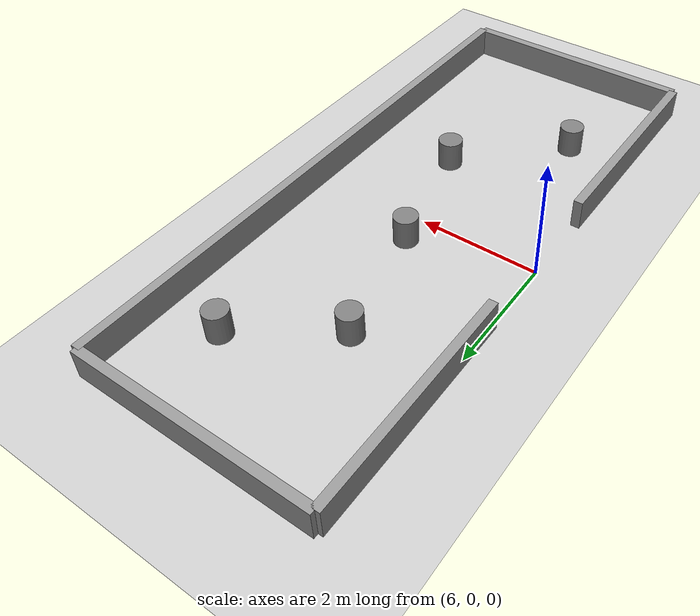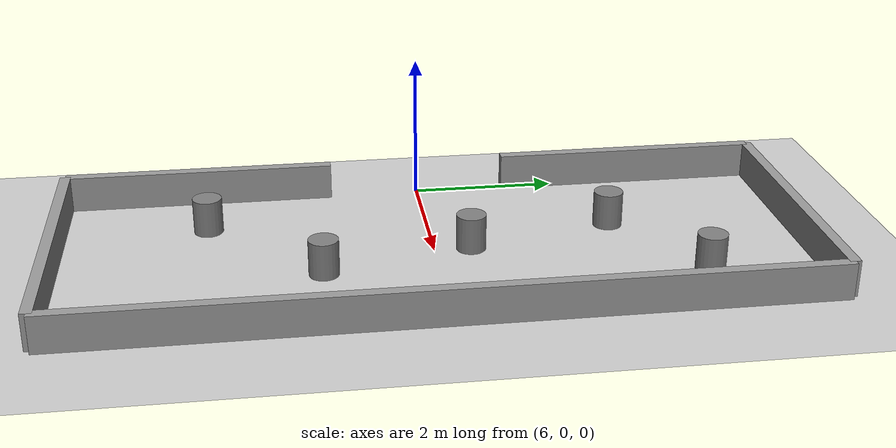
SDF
<?xml version="1.0" ?>
<sdf version="1.5">
    <world name="default">
        <physics type="ode">
            <type>world</type>
            <max_step_size>0.002</max_step_size>
            <real_time_update_rate>500</real_time_update_rate>
            <iters>500</iters>
        </physics>

        <include>
            <uri>model://sun</uri>
        </include>
        <include>
            <uri>model://ground_plane</uri>
        </include>

        <scene>
            <ambient>0.7 0.7 0.7 1</ambient>
            <background>0.8 0.85 0.9 1</background>
            <shadows>0</shadows>
        </scene>

        <!-- Left long wall UPPER: x=6, y=1.25..5 -->
        <model name="wall_left_upper">
            <static>true</static>
            <pose>6.0 3.125 0.25  0 0 0</pose>
            <link name="link">
                <collision name="col">
                    <geometry><box><size>0.15 3.75 0.5</size></box></geometry>
                </collision>
                <visual name="vis">
                    <geometry><box><size>0.15 3.75 0.5</size></box></geometry>
                    <material>
                        <ambient>0.6 0.6 0.6 1</ambient>
                        <diffuse>0.6 0.6 0.6 1</diffuse>
                    </material>
                </visual>
            </link>
        </model>

        <!-- Left long wall LOWER: x=6, y=-5..-1.25 -->
        <model name="wall_left_lower">
            <static>true</static>
            <pose>6.0 -3.125 0.25  0 0 0</pose>
            <link name="link">
                <collision name="col">
                    <geometry><box><size>0.15 3.75 0.5</size></box></geometry>
                </collision>
                <visual name="vis">
                    <geometry><box><size>0.15 3.75 0.5</size></box></geometry>
                    <material>
                        <ambient>0.6 0.6 0.6 1</ambient>
                        <diffuse>0.6 0.6 0.6 1</diffuse>
                    </material>
                </visual>
            </link>
        </model>

        <!-- Right long wall: x=10, y=-5..5, full -->
        <model name="wall_right">
            <static>true</static>
            <pose>10.0 0.0 0.25  0 0 0</pose>
            <link name="link">
                <collision name="col">
                    <geometry><box><size>0.15 10.0 0.5</size></box></geometry>
                </collision>
                <visual name="vis">
                    <geometry><box><size>0.15 10.0 0.5</size></box></geometry>
                    <material>
                        <ambient>0.6 0.6 0.6 1</ambient>
                        <diffuse>0.6 0.6 0.6 1</diffuse>
                    </material>
                </visual>
            </link>
        </model>

        <!-- Top short wall: y=5, x=6..10 -->
        <model name="wall_top">
            <static>true</static>
            <pose>8.0 5.0 0.25  0 0 0</pose>
            <link name="link">
                <collision name="col">
                    <geometry><box><size>4.0 0.15 0.5</size></box></geometry>
                </collision>
                <visual name="vis">
                    <geometry><box><size>4.0 0.15 0.5</size></box></geometry>
                    <material>
                        <ambient>0.6 0.6 0.6 1</ambient>
                        <diffuse>0.6 0.6 0.6 1</diffuse>
                    </material>
                </visual>
            </link>
        </model>

        <!-- Bottom short wall: y=-5, x=6..10 -->
        <model name="wall_bottom">
            <static>true</static>
            <pose>8.0 -5.0 0.25  0 0 0</pose>
            <link name="link">
                <collision name="col">
                    <geometry><box><size>4.0 0.15 0.5</size></box></geometry>
                </collision>
                <visual name="vis">
                    <geometry><box><size>4.0 0.15 0.5</size></box></geometry>
                    <material>
                        <ambient>0.6 0.6 0.6 1</ambient>
                        <diffuse>0.6 0.6 0.6 1</diffuse>
                    </material>
                </visual>
            </link>
        </model>

        <!-- Obs A: (7.5, 2.5) — upper-left area -->
        <model name="obs_a">
            <static>true</static>
            <pose>7.5 2.5 0.25  0 0 0</pose>
            <link name="link">
                <collision name="col">
                    <geometry><cylinder><radius>0.2</radius><length>0.5</length></cylinder></geometry>
                </collision>
                <visual name="vis">
                    <geometry><cylinder><radius>0.2</radius><length>0.5</length></cylinder></geometry>
                    <material>
                        <ambient>0.5 0.5 0.5 1</ambient>
                        <diffuse>0.5 0.5 0.5 1</diffuse>
                    </material>
                </visual>
            </link>
        </model>

        <!-- Obs B: (8.5, -1.5) — lower-mid -->
        <model name="obs_b">
            <static>true</static>
            <pose>8.5 -1.5 0.25  0 0 0</pose>
            <link name="link">
                <collision name="col">
                    <geometry><cylinder><radius>0.2</radius><length>0.5</length></cylinder></geometry>
                </collision>
                <visual name="vis">
                    <geometry><cylinder><radius>0.2</radius><length>0.5</length></cylinder></geometry>
                    <material>
                        <ambient>0.5 0.5 0.5 1</ambient>
                        <diffuse>0.5 0.5 0.5 1</diffuse>
                    </material>
                </visual>
            </link>
        </model>

        <!-- Obs C: (9.0, 3.5) — upper-right -->
        <model name="obs_c">
            <static>true</static>
            <pose>9.0 3.5 0.25  0 0 0</pose>
            <link name="link">
                <collision name="col">
                    <geometry><cylinder><radius>0.2</radius><length>0.5</length></cylinder></geometry>
                </collision>
                <visual name="vis">
                    <geometry><cylinder><radius>0.2</radius><length>0.5</length></cylinder></geometry>
                    <material>
                        <ambient>0.5 0.5 0.5 1</ambient>
                        <diffuse>0.5 0.5 0.5 1</diffuse>
                    </material>
                </visual>
            </link>
        </model>

        <!-- Obs D: (7.0, -3.0) — lower-left -->
        <model name="obs_d">
            <static>true</static>
            <pose>7.0 -3.0 0.25  0 0 0</pose>
            <link name="link">
                <collision name="col">
                    <geometry><cylinder><radius>0.2</radius><length>0.5</length></cylinder></geometry>
                </collision>
                <visual name="vis">
                    <geometry><cylinder><radius>0.2</radius><length>0.5</length></cylinder></geometry>
                    <material>
                        <ambient>0.5 0.5 0.5 1</ambient>
                        <diffuse>0.5 0.5 0.5 1</diffuse>
                    </material>
                </visual>
            </link>
        </model>

        <!-- Obs E: (8.0, 0.5) — center, near opening path -->
        <model name="obs_e">
            <static>true</static>
            <pose>8.0 0.5 0.25  0 0 0</pose>
            <link name="link">
                <collision name="col">
                    <geometry><cylinder><radius>0.2</radius><length>0.5</length></cylinder></geometry>
                </collision>
                <visual name="vis">
                    <geometry><cylinder><radius>0.2</radius><length>0.5</length></cylinder></geometry>
                    <material>
                        <ambient>0.5 0.5 0.5 1</ambient>
                        <diffuse>0.5 0.5 0.5 1</diffuse>
                    </material>
                </visual>
            </link>
        </model>

    </world>
</sdf>
